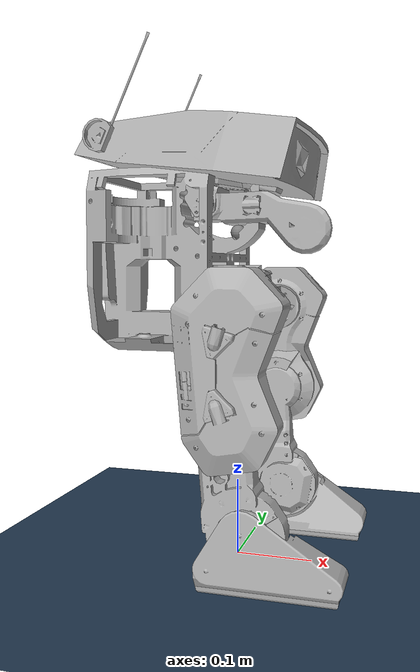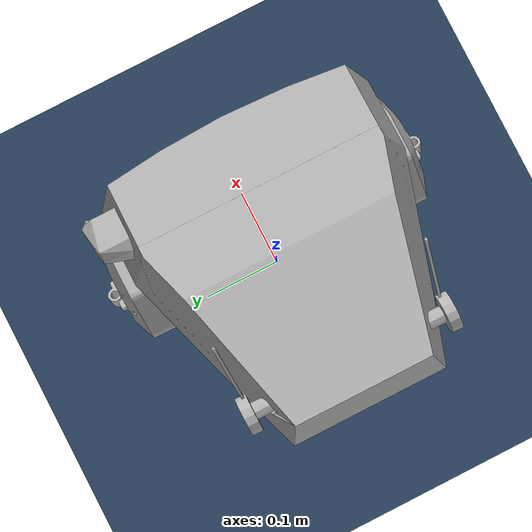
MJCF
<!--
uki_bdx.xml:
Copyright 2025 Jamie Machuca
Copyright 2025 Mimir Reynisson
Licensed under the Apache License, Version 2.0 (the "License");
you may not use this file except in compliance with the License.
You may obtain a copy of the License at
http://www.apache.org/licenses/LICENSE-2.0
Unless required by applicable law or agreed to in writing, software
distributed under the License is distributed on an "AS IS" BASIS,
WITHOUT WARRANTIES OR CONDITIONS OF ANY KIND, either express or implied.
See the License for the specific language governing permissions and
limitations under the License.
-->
<mujoco model="Uki BDX scene">
  <include file="uki_bdx.xml" />
  <default>
    <geom friction="1.5 0.01 0.0006"/>
  </default>
  <visual>
    <headlight diffuse="0.6 0.6 0.6" ambient="0.3 0.3 0.3" specular="0 0 0" />
    <rgba haze="0.15 0.25 0.35 1" />
    <global azimuth="150" elevation="-10" />
  </visual>
  <statistic center="0 0 .3" extent="0.6"/>
  <asset>
    <texture type="skybox" builtin="gradient" rgb1="0.3 0.5 0.7" rgb2="0 0 0" width="512" height="3072" />
    <texture type="2d" name="groundplane" builtin="checker" mark="edge" rgb1="0.2 0.3 0.4" rgb2="0.1 0.2 0.3" markrgb="0.8 0.8 0.8" width="300" height="300" />
    <material name="groundplane" texture="groundplane" texuniform="true" texrepeat="5 5" reflectance="0.2" />
  </asset>
  <worldbody>
    <light pos="0 0 3" dir="0 0 -1" directional="false" />
    <body name="floor">
      <geom pos="0 0 0" name="floor" size="0 0 .125" type="plane" material="groundplane" conaffinity="1" contype="1" />
    </body>
  </worldbody>

  <keyframe>
    <key name="home"
      qpos="
        0 0 0.39
        1 0 0 0

        -0.05013 -0.05247 0.77509 -0.80940 0.14038

        0.736 0.692 0.0 0.0

        -0.05013 -0.05247 -0.77509 -0.80940 -0.14038
      "
      ctrl="
        -0.05013 -0.05247 0.77509 -0.80940 0.14038

        0.736 0.692 0.0 0.0

        -0.05013 -0.05247 -0.77509 -0.80940 -0.14038
      "/>

    <key name="snapshot"
      qpos="
        -0.0277584 -0.0114766 0.34433
        0.999203 0.0149187 -0.0370206 0.000185122

        -0.0508666 -0.0524333 0.807296 -0.856448 0.124243

        0.689949 0.717491 0.0 0.0

        -0.0480838 -0.0517518 -0.807887 -0.857383 -0.124157
      "
      ctrl="
        -0.05013 -0.05247 0.77509 -0.80940 0.14038

        0.736 0.692 0.0 0.0

        -0.05013 -0.05247 -0.77509 -0.80940 -0.14038
      "/>

  </keyframe>
</mujoco>

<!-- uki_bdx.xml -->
<mujoco model="uki_bdx">

  <option cone="elliptic" impratio="100"/>
  <!-- @START:!high-res@ -->
  <compiler angle="radian" meshdir="assets" texturedir="assets" autolimits="true" eulerseq="zyx"/>
  <!-- @END:!high-res@ -->

  <default>
    <default class="bdx">
      <default class="go1">
        <joint type="hinge" damping="0.016" armature="0.0043" frictionloss="0.15" actuatorfrcrange="-100 100"/>
        <position inheritrange="1" kp="40" kv="1.2" forcerange="-23.7 23.7"/>
      </default>

      <default class="a1">
        <joint type="hinge" damping="0.023" armature="0.011" frictionloss="0.45" actuatorfrcrange="-100 100"/>
        <position inheritrange="1" kp="45" kv="1.2" forcerange="-33.5 33.5"/>
      </default>

      <default class="xh540">
        <joint type="hinge" damping="0.009" armature="0.0058" frictionloss="0.05" actuatorfrcrange="-100 100"/>
        <position inheritrange="1" kp="5" kv="0.2" forcerange="-4.8 4.8"/>
      </default>

      <default class="visualgeom">
        <geom material="visualgeom" density="0" group="0" contype="0" conaffinity="0"/>
      </default>
      <default class="collisiongeom">
        <geom group="1"/>
      </default>
    </default>
  </default>

  <asset>
    <material name="visualgeom" rgba="0.7 0.7 0.7 1" />
    <material name="collision_material" rgba="0.0 0.0 0.28 0.1" />
    <mesh name="body" file="body.stl" scale="0.001 0.001 0.001"/>
    <mesh name="left_foot" file="left_foot.stl" scale="0.001 0.001 0.001"/>
    <mesh name="left_lower_leg" file="left_lower_leg.stl" scale="0.001 0.001 0.001"/>
    <mesh name="left_upper_leg" file="left_upper_leg.stl" scale="0.001 0.001 0.001"/>
    <mesh name="left_hip" file="left_hip.stl" scale="0.001 0.001 0.001"/>
    <mesh name="left_hip_rotation" file="left_hip_rotation.stl" scale="0.001 0.001 0.001"/>
    <mesh name="left_foot_pad" file="left_foot_pad.stl" scale="0.001 0.001 0.001"/>
    <mesh name="right_foot_pad" file="right_foot_pad.stl" scale="0.001 0.001 0.001"/>
    <mesh name="right_foot" file="right_foot.stl" scale="0.001 0.001 0.001"/>
    <mesh name="right_lower_leg" file="right_lower_leg.stl" scale="0.001 0.001 0.001"/>
    <mesh name="right_upper_leg" file="right_upper_leg.stl" scale="0.001 0.001 0.001"/>
    <mesh name="right_hip_rotation" file="right_hip_rotation.stl" scale="0.001 0.001 0.001"/>
    <mesh name="right_hip" file="right_hip.stl" scale="0.001 0.001 0.001"/>
    <mesh name="neck_extension" file="neck_extension.stl" scale="0.001 0.001 0.001"/>
    <mesh name="neck_pitch" file="neck_pitch.stl" scale="0.001 0.001 0.001"/>
    <mesh name="neck_yaw" file="neck_yaw.stl" scale="0.001 0.001 0.001"/>
    <mesh name="head" file="head.stl" scale="0.001 0.001 0.001"/>
    <mesh name="left_antenna" file="left_antenna.stl" scale="0.001 0.001 0.001"/>
    <mesh name="right_antenna" file="right_antenna.stl" scale="0.001 0.001 0.001"/>
  </asset>

  <worldbody>
    <body name="root" pos="0 0 0.38" quat="1 0 0 0" childclass="bdx">
      <freejoint name="root"/>

      <site name="imu" size="0.01" pos="0 0 0.05"/>
      <geom type="mesh" rgba="0.7 0.7 0.7 1" mesh="body" class="visualgeom"/>
      <geom type="mesh" rgba="0.7 0.7 0.7 1" mesh="body" class="collisiongeom"/>
      <inertial pos="-0.012 0.00011 -0.01349" quat="0.50583 0.49592 0.49592 0.50583" mass="3.674" diaginertia="0.04019 0.03434 0.02103"/>
      <body name="left_hip_rotation" pos="0 0.04661 0.0072">
        <joint name="left_hip_yaw" class="go1" pos="0 0 0" axis="0 0 -1" range="-0.5 0.29"/>
        <geom name="geom_left_hip_rotation" pos="0 -0.04661 -0.0072" type="mesh" rgba="0.7 0.7 0.7 1" mesh="left_hip_rotation" class="visualgeom"/>
        <geom type="mesh" rgba="0.7 0.7 0.7 1" mesh="left_hip_rotation" pos="0 -0.04661 -0.0072" class="collisiongeom"/>
        <inertial pos="0.00350 0.00790 -0.05200" quat="1.00000 0.06700 -0.01800 0.00290" mass="0.689" diaginertia="0.00091 0.00063 0.00048"/>
        <body name="left_hip" pos="0.01127 0.004953 -0.059623">
          <joint name="left_hip_roll" class="a1" pos="0 0 0" axis="1 0 0" range="-0.628319 0.436332"/>
          <geom name="geom_left_hip" pos="-0.01127 -0.051563 0.052423" quat="1 0 0 0" type="mesh" rgba="0.7 0.7 0.7 1" mesh="left_hip" class="visualgeom"/>
          <geom type="mesh" rgba="0.7 0.7 0.7 1" mesh="left_hip" pos="-0.01127 -0.051563 0.052423" quat="1 0 0 0" class="collisiongeom"/>
          <inertial pos="0.01900 0.03500 -0.00028" quat="0.71000 0.71000 -0.00560 -0.02400" mass="0.049" diaginertia="0.00005 0.00005 0.00002"/>
          <body name="left_upper_leg" pos="0.019409 0.081888 0">
            <joint name="left_hip_pitch" class="a1" pos="0 0 0" axis="0 1 0" range="-2.05949 2.05949"/>
            <geom pos="-0.030679 -0.133451 0.052423" quat="1 0 0 0" type="mesh" rgba="0.7 0.7 0.7 1" mesh="left_upper_leg" class="visualgeom"/>
            <geom type="mesh" rgba="0.7 0.7 0.7 1" mesh="left_upper_leg" pos="-0.030679 -0.133451 0.052423" quat="1 0 0 0" class="collisiongeom"/>
            <inertial pos="-0.00410 0.01300 -0.05600" quat="0.71000 0.00940 0.00620 0.71000" mass="2.089" diaginertia="0.00870 0.00769 0.00218"/>
            <body name="left_lower_leg" pos="-0.000673 0 -0.118509">
              <joint name="left_knee" class="a1" pos="0 0 0" axis="0 1 0" range="-2.16 0"/>
              <geom pos="-0.030006 -0.133451 0.170932" quat="1 0 0 0" type="mesh" rgba="0.7 0.7 0.7 1" mesh="left_lower_leg" class="visualgeom"/>
              <geom type="mesh" rgba="0.7 0.7 0.7 1" mesh="left_lower_leg" pos="-0.030006 -0.133451 0.170932" quat="1 0 0 0" class="collisiongeom"/>
              <inertial pos="0.00073 -0.02400 -0.09300" quat="0.71000 -0.07600 -0.02600 0.70000" mass="0.62" diaginertia="0.00210 0.00182 0.00036"/>
              <body name="left_foot_cuboid" pos="0.010774 -0.009467 -0.136762">
                <joint name="left_ankle" class="go1" pos="0 0 0" axis="0 1 0" range="-1.23 1.48"/>
                <geom pos="-0.04078 -0.123984 0.307694" quat="1 0 0 0" type="mesh" rgba="0.7 0.7 0.7 1" mesh="left_foot" class="visualgeom"/>
                <geom type="mesh" rgba="0.7 0.7 0.7 1" mesh="left_foot" pos="-0.04078 -0.123984 0.307694" quat="1 0 0 0" class="collisiongeom"/>
                <inertial pos="0.04100 -0.00015 -0.03658" quat="0.56198 0.46073 0.56808 0.39100" mass="0.173" diaginertia="0.00012 0.00010 0.00003"/>

                <!-- @START:!box_foot@ -->
               <body name="left_foot_pad" pos="0 0 0">
                  <geom pos="-0.04078 -0.123984 0.307694" quat="1 0 0 0" type="mesh" rgba="0.7 0.7 0.7 1" mesh="left_foot_pad"  density="0" group="1" name="left_foot_pad" contype="0" conaffinity="1" solimp="0.015 1 0.031" friction="0.8 0.02 0.01"/>
                  <geom type="mesh" rgba="0.7 0.7 0.7 1" mesh="left_foot_pad" pos="-0.04078 -0.123984 0.307694" quat="1 0 0 0" class="visualgeom"/>
                  <inertial pos="0.02600 -0.01500 -0.07100" quat="0.00000 0.71000 0.00000 0.71000" mass="0.1" diaginertia="0.00010 0.00010 0.00001"/>
                  <body name="left_foot" pos="0 0 -0.075">
                    <inertial pos="0 0 0" quat="1.0 0.0 0.0 0.0" mass="1e-9" diaginertia="0.0 0.0 0.0" />
                  </body>
                  <site name="left_foot" size="0.015" pos="0.025 -0.015 -0.07"/>
                </body>
                <!-- @END:!box_foot@ -->

              </body>
            </body>
          </body>
        </body>
      </body>
      <body name="neck_extension" pos="0.092558 -0.00375 0.053208">
        <joint name="neck_pitch" class="go1" pos="0 0 0" axis="0 1 0" range="0 1.32645"/>
        <geom pos="-0.092558 0.00375 -0.053208" quat="1 0 0 0" type="mesh" rgba="0.7 0.7 0.7 1" mesh="neck_extension" class="visualgeom"/>
        <geom type="mesh" rgba="0.7 0.7 0.7 1" mesh="neck_extension" pos="-0.092558 0.00375 -0.053208" quat="1 0 0 0" class="collisiongeom"/>

        <body name="neck_pitch" pos="-0.13236 0.004266 0.028444">
          <joint name="head_pitch" class="xh540" pos="0 0 0" axis="0 -1 0" range="0 2.1293"/>
          <geom pos="0.039802 -0.000516 -0.081652" quat="1 0 0 0" type="mesh" rgba="0.7 0.7 0.7 1" mesh="neck_pitch" class="visualgeom"/>
          <geom type="mesh" rgba="0.7 0.7 0.7 1" mesh="neck_pitch" pos="0.039802 -0.000516 -0.081652" quat="1 0 0 0" class="collisiongeom"/>

          <inertial pos="-0.0041 4.4e-05 0.014" quat="0.57 0.57 -0.42 0.42" mass="0.096" diaginertia="4e-05 3.8e-05 1.9e-05"/>

          <body name="neck_yaw" pos="-0.002821 -0.000107 0.031883">
            <joint name="head_yaw" class="xh540" pos="0 0 0" axis="0 0 -1" range="-1.5708 1.5708"/>
            <geom pos="0.042623 -0.000409 -0.113535" quat="1 0 0 0" type="mesh" rgba="0.7 0.7 0.7 1" mesh="neck_yaw" class="visualgeom"/>
            <geom type="mesh" rgba="0.7 0.7 0.7 1" mesh="neck_yaw" pos="0.042623 -0.000409 -0.113535" quat="1 0 0 0" class="collisiongeom"/>
            <inertial pos="0.013 5.4e-05 0.017" quat="0.0016 0.77 -0.0023 0.64" mass="0.33" diaginertia="0.00024 0.00018 0.00014"/>
            <body name="head" pos="0.05444 -1e-05 0.006383">
              <joint name="head_roll" class="xh540" pos="0 0 0" axis="-1 0 0" range="-0.43 0.46"/>
              <geom pos="-0.011817 -0.000399 -0.119918" quat="1 0 0 0" type="mesh" rgba="0.7 0.7 0.7 1" mesh="head" class="visualgeom"/>
              <geom type="mesh" rgba="0.7 0.7 0.7 1" mesh="head" pos="-0.011817 -0.000399 -0.119918" quat="1 0 0 0" class="collisiongeom"/>
              <inertial pos="-0.05002 0.01142 0.02800" quat="-0.01568 0.73584 -0.00950 0.67879" mass="1.331" diaginertia="0.01357 0.00842 0.00694"/>
              <body name="left_antenna" pos="-0.161147 0.078549 0.045871" quat="1.0 0 -0.5826834 0">
                <geom pos="0.14933 -0.078948 -0.165789" quat="1 0 0 0" type="mesh" rgba="0.7 0.7 0.7 1" mesh="left_antenna" class="visualgeom"/>
                <geom type="mesh" rgba="0.7 0.7 0.7 1" mesh="left_antenna" pos="0.14933 -0.078948 -0.165789" quat="1 0 0 0" class="collisiongeom"/>
                <inertial pos="0 0 0" quat="1.0 0.0 0.0 0.0" mass="1e-9" diaginertia="0.0 0.0 0.0" />
              </body>
              <body name="right_antenna" pos="-0.161147 -0.07855 0.045871" quat="1.0 0 -0.5826834 0">
                <geom pos="0.14933 0.078151 -0.165789" quat="1 0 0 0" type="mesh" rgba="0.7 0.7 0.7 1" mesh="right_antenna" class="visualgeom"/>
                <geom type="mesh" rgba="0.7 0.7 0.7 1" mesh="right_antenna" pos="0.14933 0.078151 -0.165789" quat="1 0 0 0" class="collisiongeom"/>
                <inertial pos="0 0 0" quat="1.0 0.0 0.0 0.0" mass="1e-9" diaginertia="0.0 0.0 0.0" />
              </body>
            </body>
          </body>
        </body>
      </body>
      <body name="right_hip_rotation" pos="-9e-06 -0.046484 0.0072">
        <joint name="right_hip_yaw" class="go1" pos="0 0 0" axis="0 0 -1" range="-0.29 0.5"/>
        <geom pos="9e-06 0.046484 -0.0072" quat="1 0 0 0" type="mesh" rgba="0.7 0.7 0.7 1" mesh="right_hip_rotation" class="visualgeom"/>
        <geom type="mesh" rgba="0.7 0.7 0.7 1" mesh="right_hip_rotation" pos="9e-06 0.046484 -0.0072" quat="1 0 0 0" class="collisiongeom"/>
        <inertial pos="0.00350 -0.00770 -0.05100" quat="1.00000 -0.06500 -0.01900 -0.00310" mass="0.689" diaginertia="0.00091 0.00063 0.00048"/>
        <body name="right_hip" pos="0.01127 -0.004952 -0.059623">
          <joint name="right_hip_roll" class="a1" pos="0 0 0" axis="1 0 0" range="-0.436332 0.628319"/>
          <geom pos="-0.011261 0.051436 0.052423" quat="1 0 0 0" type="mesh" rgba="0.7 0.7 0.7 1" mesh="right_hip" class="visualgeom"/>
          <geom type="mesh" rgba="0.7 0.7 0.7 1" mesh="right_hip" pos="-0.011261 0.051436 0.052423" quat="1 0 0 0" class="collisiongeom"/>
          <inertial pos="0.01900 -0.03500 -0.00029" quat="0.71000 0.71000 0.02300 0.00580" mass="0.049" diaginertia="0.00005 0.00005 0.00002"/>
          <body name="right_upper_leg" pos="0.01941 -0.081889 0">
            <joint name="right_hip_pitch" class="a1" pos="0 0 0" axis="0 -1 0" range="-2.05949 2.05949"/>
            <geom pos="-0.030671 0.133325 0.052423" quat="1 0 0 0" type="mesh" rgba="0.7 0.7 0.7 1" mesh="right_upper_leg" class="visualgeom"/>
            <geom type="mesh" rgba="0.7 0.7 0.7 1" mesh="right_upper_leg" pos="-0.030671 0.133325 0.052423" quat="1 0 0 0" class="collisiongeom"/>
            <inertial pos="-0.00410 -0.01300 -0.05600" quat="0.71000 0.00620 0.00940 0.71000" mass="2.089" diaginertia="0.00895 0.00791 0.00224"/>
            <body name="right_lower_leg" pos="-0.000674 0 -0.11851">
              <joint name="right_knee" class="a1" pos="0 0 0" axis="0 1 0" range="-2.16 0"/>
              <geom pos="-0.029997 0.133325 0.170933" quat="1 0 0 0" type="mesh" rgba="0.7 0.7 0.7 1" mesh="right_lower_leg" class="visualgeom"/>
              <geom type="mesh" rgba="0.7 0.7 0.7 1" mesh="right_lower_leg" pos="-0.029997 0.133325 0.170933" quat="1 0 0 0" class="collisiongeom"/>
              <inertial pos="0.00073 0.02400 -0.09300" quat="0.70000 -0.02600 -0.07600 0.71000" mass="0.62" diaginertia="0.00210 0.00182 0.00036"/>
              <body name="right_foot_cuboid" pos="0.010775 0.009467 -0.136761">
                <joint name="right_ankle" class="go1" pos="0 0 0" axis="0 -1 0" range="-1.48 1.23"/>
                <geom pos="-0.040772 0.123858 0.307694" quat="1 0 0 0" type="mesh" rgba="0.7 0.7 0.7 1" mesh="right_foot" class="visualgeom"/>
                <geom type="mesh" rgba="0.7 0.7 0.7 1" mesh="right_foot" pos="-0.040772 0.123858 0.307694" quat="1 0 0 0" class="collisiongeom"/>
                <inertial pos="0.04100 0.00015 -0.03658" quat="0.39100 0.56808 0.46073 0.56198" mass="0.173" diaginertia="0.00012 0.00010 0.00003"/>

                <!-- @START:!box_foot@ -->
                <body name="right_foot_pad" pos="0 0 0">
                  <geom pos="-0.040772 0.123858 0.307694" quat="1 0 0 0" type="mesh" rgba="0.7 0.7 0.7 1" mesh="right_foot_pad"  density="0" group="1" name="right_foot_pad" contype="0" conaffinity="1" solimp="0.015 1 0.031" friction="0.8 0.02 0.01"/>
                  <geom type="mesh" rgba="0.7 0.7 0.7 1" mesh="right_foot_pad" pos="-0.040772 0.123858 0.307694" quat="1 0 0 0" class="visualgeom"/>
                  <inertial pos="0.02600 0.01500 -0.07100" quat="0.71000 0.00000 0.71000 0.00000" mass="0.1" diaginertia="0.00010 0.00010 0.00001"/>
                  <body name="right_foot" pos="0 0 -0.075">
                    <inertial pos="0 0 0" quat="1.0 0.0 0.0 0.0" mass="1e-9" diaginertia="0.0 0.0 0.0" />
                  </body>
                  <site name="right_foot" size="0.015" pos="0.025 0.015 -0.07"/>
                </body>
                <!-- @END:!box_foot@ -->

              </body>
            </body>
          </body>
        </body>
      </body>
    </body>
  </worldbody>

  <actuator>
    <position name="left_hip_yaw" joint="left_hip_yaw" class="go1"/>
    <position name="left_hip_roll" joint="left_hip_roll" class="a1"/>
    <position name="left_hip_pitch" joint="left_hip_pitch" class="a1"/>
    <position name="left_knee" joint="left_knee" class="a1"/>
    <position name="left_ankle" joint="left_ankle" class="go1"/>

    <position name="neck_pitch" joint="neck_pitch" class="go1"/>
    <position name="head_pitch" joint="head_pitch" class="xh540"/>
    <position name="head_yaw" joint="head_yaw" class="xh540"/>
    <position name="head_roll" joint="head_roll" class="go1"/>

    <position name="right_hip_yaw" joint="right_hip_yaw" class="go1"/>
    <position name="right_hip_roll" joint="right_hip_roll" class="a1"/>
    <position name="right_hip_pitch" joint="right_hip_pitch" class="a1"/>
    <position name="right_knee" joint="right_knee" class="a1"/>
    <position name="right_ankle" joint="right_ankle" class="go1"/>
  </actuator>

  <contact>
    <exclude body1="left_hip_rotation" body2="root"/>
    <exclude body1="left_upper_leg" body2="root"/>
    <exclude body1="left_hip" body2="root"/>
    <exclude body1="right_hip_rotation" body2="root"/>
    <exclude body1="right_upper_leg" body2="root"/>
    <exclude body1="right_hip" body2="root"/>
    <exclude body1="neck_pitch" body2="root"/>
    <exclude body1="neck_pitch" body2="head"/>
  </contact>

  <sensor>
    <!-- @START:!imu-noise@ -->
    <gyro site="imu" name="gyro"/>
    <velocimeter site="imu" name="local_linvel"/>
    <accelerometer site="imu" name="accelerometer"/>
    <framepos objtype="site" objname="imu" name="position"/>
    <framezaxis objtype="site" objname="imu" name="upvector"/>
    <framexaxis objtype="site" objname="imu" name="forwardvector"/>
    <framelinvel objtype="site" objname="imu" name="global_linvel"/>
    <frameangvel objtype="site" objname="imu" name="global_angvel"/>
    <framequat objtype="site" objname="imu" name="orientation"/>
    <framelinvel objtype="site" objname="right_foot" name="right_foot_global_linvel"/>
    <framelinvel objtype="site" objname="left_foot" name="left_foot_global_linvel"/>
    <!-- @END:!imu-noise@ -->

  </sensor>
</mujoco>
